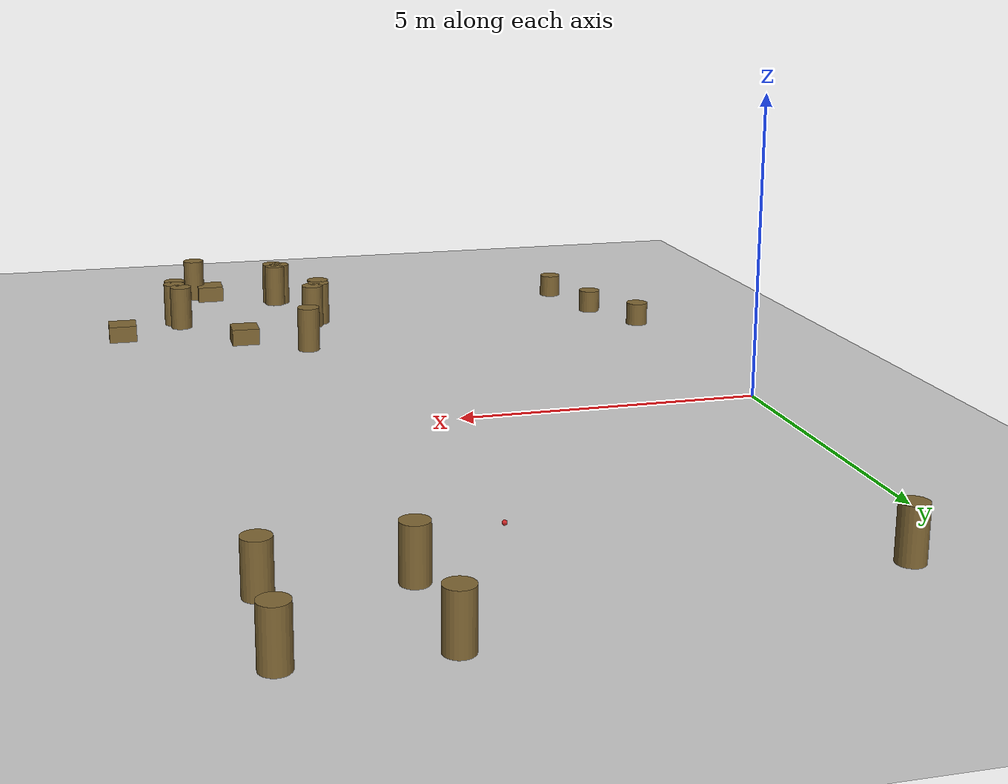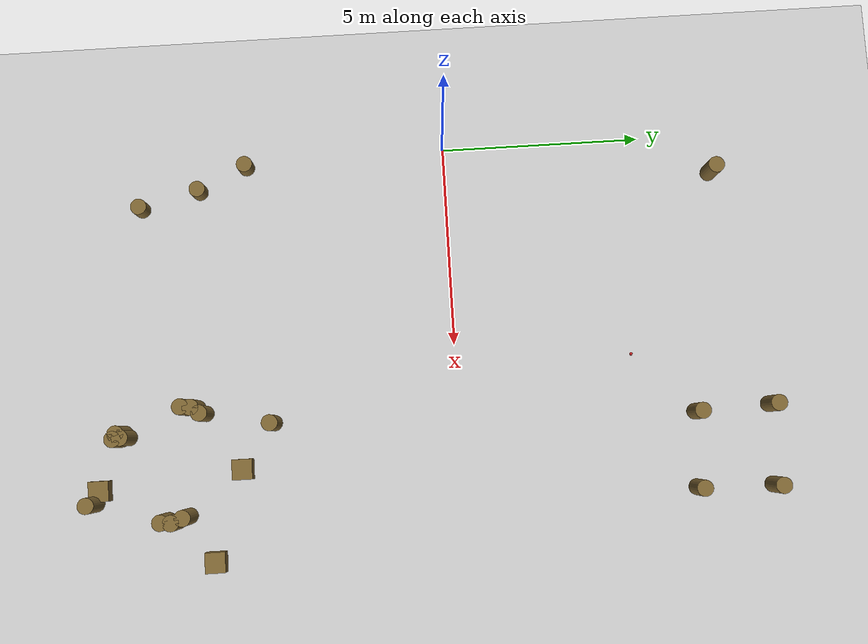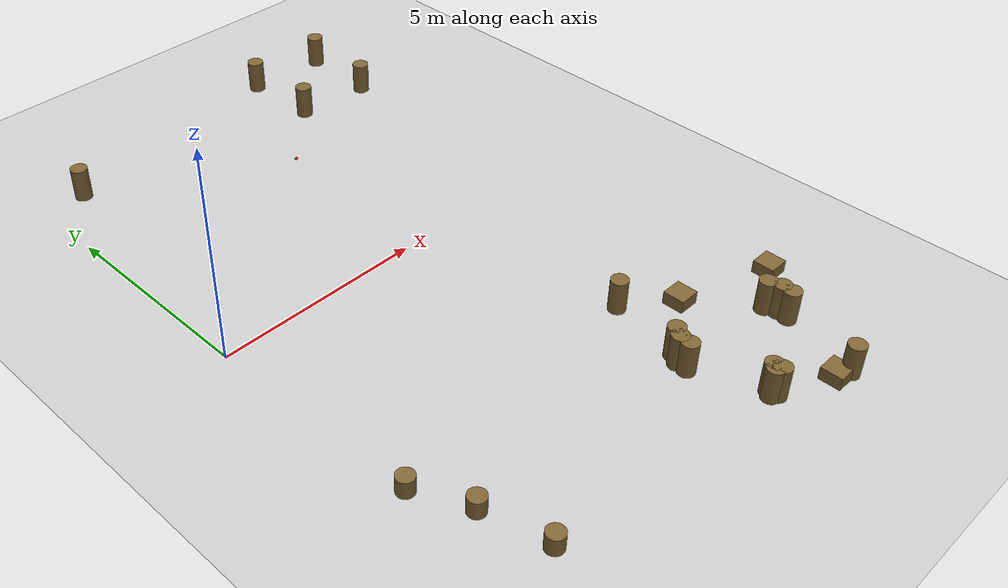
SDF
<sdf version="1.6">
 <world name="default">
  <model name="ground_plane">
   <static>1</static>
   <link name="link">
    <collision name="collision">
     <geometry><plane><normal>0 0 1</normal><size>100 100</size></plane></geometry>
     <surface><friction><ode><mu>100</mu><mu2>50</mu2></ode></friction></surface>
    </collision>
    <visual name="visual">
     <cast_shadows>0</cast_shadows>
     <geometry><plane><normal>0 0 1</normal><size>100 100</size></plane></geometry>
     <material>
      <script><uri>file://media/materials/scripts/gazebo.material</uri><name>Gazebo/Grey</name></script>
     </material>
    </visual>
   </link>
  </model>
  <model name="mini_cylinder_0_clone_0">
   <link name="link">
    <inertial>
     <mass>1</mass>
     <inertia><ixx>0.145833</ixx><ixy>0</ixy><ixz>0</ixz><iyy>0.145833</iyy><iyz>0</iyz><izz>0.125</izz></inertia>
    </inertial>
    <visual name="visual">
     <geometry><cylinder><radius>0.2</radius><length>0.8</length></cylinder></geometry>
     <material>
      <script><name>Gazebo/Grey</name><uri>file://media/materials/scripts/gazebo.material</uri></script>
      <shader type="vertex"><normal_map>__default__</normal_map></shader>
      <ambient>0.5 0.4 0.2 1</ambient>
      <diffuse>0.7 0.7 0.7 1</diffuse>
      <specular>0.01 0.01 0.01 1</specular>
      <emissive>0 0 0 1</emissive>
     </material>
    </visual>
    <collision name="collision">
     <geometry><cylinder><radius>0.2</radius><length>0.8</length></cylinder></geometry>
     <surface>
      <friction>
       <ode><mu>1</mu><mu2>1</mu2><fdir1>0 0 0</fdir1><slip1>0</slip1><slip2>0</slip2></ode>
       <torsional>
        <coefficient>1</coefficient>
        <patch_radius>0</patch_radius>
        <surface_radius>0</surface_radius>
        <use_patch_radius>1</use_patch_radius>
        <ode><slip>0</slip></ode>
       </torsional>
      </friction>
      <bounce><restitution_coefficient>0</restitution_coefficient><threshold>1e+06</threshold></bounce>
      <contact>
       <collide_without_contact>0</collide_without_contact>
       <collide_without_contact_bitmask>1</collide_without_contact_bitmask>
       <collide_bitmask>1</collide_bitmask>
       <ode>
        <soft_cfm>0</soft_cfm>
        <soft_erp>0.2</soft_erp>
        <kp>1e+13</kp>
        <kd>1</kd>
        <max_vel>0.01</max_vel>
        <min_depth>0</min_depth>
       </ode>
       <bullet>
        <split_impulse>1</split_impulse>
        <split_impulse_penetration_threshold>-0.01</split_impulse_penetration_threshold>
        <soft_cfm>0</soft_cfm>
        <soft_erp>0.2</soft_erp>
        <kp>1e+13</kp>
        <kd>1</kd>
       </bullet>
      </contact>
     </surface>
    </collision>
   </link>
   <static>1</static>
   <pose>8.88945 5.77982 0.348185 0 -0 0</pose>
  </model>
  <model name="target_0">
   <link name="link">
    <pose>0 0 0.0375 0 -0 0</pose>
    <inertial>
     <mass>0.1467</mass>
     <inertia>
      <ixx>8.25187e-05</ixx>
      <ixy>0</ixy>
      <ixz>0</ixz>
      <iyy>8.25187e-05</iyy>
      <iyz>0</iyz>
      <izz>8.25187e-05</izz>
     </inertia>
    </inertial>
    <velocity_decay><linear>0</linear><angular>0.005</angular></velocity_decay>
    <visual name="visual">
     <geometry><sphere><radius>0.0375</radius></sphere></geometry>
     <material>
      <script><uri>file://media/materials/scripts/gazebo.material</uri><name>Gazebo/Red</name></script>
      <shader type="pixel"/>
     </material>
    </visual>
    <collision name="collision">
     <geometry><sphere><radius>0.0375</radius></sphere></geometry>
     <surface>
      <friction>
       <ode><mu>1</mu><mu2>1</mu2><fdir1>0 0 0</fdir1><slip1>0</slip1><slip2>0</slip2></ode>
       <torsional>
        <coefficient>1</coefficient>
        <patch_radius>0</patch_radius>
        <surface_radius>0.01</surface_radius>
        <use_patch_radius>0</use_patch_radius>
        <ode><slip>0</slip></ode>
       </torsional>
      </friction>
      <bounce><restitution_coefficient>0</restitution_coefficient><threshold>1e+06</threshold></bounce>
      <contact>
       <collide_without_contact>0</collide_without_contact>
       <collide_without_contact_bitmask>1</collide_without_contact_bitmask>
       <collide_bitmask>1</collide_bitmask>
       <ode>
        <soft_cfm>0</soft_cfm>
        <soft_erp>0.2</soft_erp>
        <kp>100000</kp>
        <kd>100</kd>
        <max_vel>100</max_vel>
        <min_depth>0.001</min_depth>
       </ode>
       <bullet>
        <split_impulse>1</split_impulse>
        <split_impulse_penetration_threshold>-0.01</split_impulse_penetration_threshold>
        <soft_cfm>0</soft_cfm>
        <soft_erp>0.2</soft_erp>
        <kp>100000</kp>
        <kd>100</kd>
       </bullet>
      </contact>
     </surface>
    </collision>
   </link>
   <static>0</static>
   <pose>5.5098 4.40714 -0.001014 0 -0 0</pose>
  </model>
  <model name="mini_cylinder_0_clone_0_clone">
   <link name="link">
    <inertial>
     <mass>1</mass>
     <inertia><ixx>0.145833</ixx><ixy>0</ixy><ixz>0</ixz><iyy>0.145833</iyy><iyz>0</iyz><izz>0.125</izz></inertia>
    </inertial>
    <visual name="visual">
     <geometry><cylinder><radius>0.2</radius><length>0.8</length></cylinder></geometry>
     <material>
      <script><name>Gazebo/Grey</name><uri>file://media/materials/scripts/gazebo.material</uri></script>
      <shader type="vertex"><normal_map>__default__</normal_map></shader>
      <ambient>0.5 0.4 0.2 1</ambient>
      <diffuse>0.7 0.7 0.7 1</diffuse>
      <specular>0.01 0.01 0.01 1</specular>
      <emissive>0 0 0 1</emissive>
     </material>
    </visual>
    <collision name="collision">
     <geometry><cylinder><radius>0.2</radius><length>0.8</length></cylinder></geometry>
     <surface>
      <friction>
       <ode><mu>1</mu><mu2>1</mu2><fdir1>0 0 0</fdir1><slip1>0</slip1><slip2>0</slip2></ode>
       <torsional>
        <coefficient>1</coefficient>
        <patch_radius>0</patch_radius>
        <surface_radius>0</surface_radius>
        <use_patch_radius>1</use_patch_radius>
        <ode><slip>0</slip></ode>
       </torsional>
      </friction>
      <bounce><restitution_coefficient>0</restitution_coefficient><threshold>1e+06</threshold></bounce>
      <contact>
       <collide_without_contact>0</collide_without_contact>
       <collide_without_contact_bitmask>1</collide_without_contact_bitmask>
       <collide_bitmask>1</collide_bitmask>
       <ode>
        <soft_cfm>0</soft_cfm>
        <soft_erp>0.2</soft_erp>
        <kp>1e+13</kp>
        <kd>1</kd>
        <max_vel>0.01</max_vel>
        <min_depth>0</min_depth>
       </ode>
       <bullet>
        <split_impulse>1</split_impulse>
        <split_impulse_penetration_threshold>-0.01</split_impulse_penetration_threshold>
        <soft_cfm>0</soft_cfm>
        <soft_erp>0.2</soft_erp>
        <kp>1e+13</kp>
        <kd>1</kd>
       </bullet>
      </contact>
     </surface>
    </collision>
   </link>
   <static>1</static>
   <pose>7.02966 5.87996 0.4 0 -0 0</pose>
  </model>
  <model name="mini_cylinder_0_clone_0_clone_0">
   <link name="link">
    <inertial>
     <mass>1</mass>
     <inertia><ixx>0.145833</ixx><ixy>0</ixy><ixz>0</ixz><iyy>0.145833</iyy><iyz>0</iyz><izz>0.125</izz></inertia>
    </inertial>
    <visual name="visual">
     <geometry><cylinder><radius>0.2</radius><length>0.8</length></cylinder></geometry>
     <material>
      <script><name>Gazebo/Grey</name><uri>file://media/materials/scripts/gazebo.material</uri></script>
      <shader type="vertex"><normal_map>__default__</normal_map></shader>
      <ambient>0.5 0.4 0.2 1</ambient>
      <diffuse>0.7 0.7 0.7 1</diffuse>
      <specular>0.01 0.01 0.01 1</specular>
      <emissive>0 0 0 1</emissive>
     </material>
    </visual>
    <collision name="collision">
     <geometry><cylinder><radius>0.2</radius><length>0.8</length></cylinder></geometry>
     <surface>
      <friction>
       <ode><mu>1</mu><mu2>1</mu2><fdir1>0 0 0</fdir1><slip1>0</slip1><slip2>0</slip2></ode>
       <torsional>
        <coefficient>1</coefficient>
        <patch_radius>0</patch_radius>
        <surface_radius>0</surface_radius>
        <use_patch_radius>1</use_patch_radius>
        <ode><slip>0</slip></ode>
       </torsional>
      </friction>
      <bounce><restitution_coefficient>0</restitution_coefficient><threshold>1e+06</threshold></bounce>
      <contact>
       <collide_without_contact>0</collide_without_contact>
       <collide_without_contact_bitmask>1</collide_without_contact_bitmask>
       <collide_bitmask>1</collide_bitmask>
       <ode>
        <soft_cfm>0</soft_cfm>
        <soft_erp>0.2</soft_erp>
        <kp>1e+13</kp>
        <kd>1</kd>
        <max_vel>0.01</max_vel>
        <min_depth>0</min_depth>
       </ode>
       <bullet>
        <split_impulse>1</split_impulse>
        <split_impulse_penetration_threshold>-0.01</split_impulse_penetration_threshold>
        <soft_cfm>0</soft_cfm>
        <soft_erp>0.2</soft_erp>
        <kp>1e+13</kp>
        <kd>1</kd>
       </bullet>
      </contact>
     </surface>
    </collision>
   </link>
   <static>1</static>
   <pose>6.95356 7.73119 0.4 0 -0 0</pose>
  </model>
  <model name="mini_cylinder_0_clone_0_clone_1">
   <link name="link">
    <inertial>
     <mass>1</mass>
     <inertia><ixx>0.145833</ixx><ixy>0</ixy><ixz>0</ixz><iyy>0.145833</iyy><iyz>0</iyz><izz>0.125</izz></inertia>
    </inertial>
    <visual name="visual">
     <geometry><cylinder><radius>0.2</radius><length>0.8</length></cylinder></geometry>
     <material>
      <script><name>Gazebo/Grey</name><uri>file://media/materials/scripts/gazebo.material</uri></script>
      <shader type="vertex"><normal_map>__default__</normal_map></shader>
      <ambient>0.5 0.4 0.2 1</ambient>
      <diffuse>0.7 0.7 0.7 1</diffuse>
      <specular>0.01 0.01 0.01 1</specular>
      <emissive>0 0 0 1</emissive>
     </material>
    </visual>
    <collision name="collision">
     <geometry><cylinder><radius>0.2</radius><length>0.8</length></cylinder></geometry>
     <surface>
      <friction>
       <ode><mu>1</mu><mu2>1</mu2><fdir1>0 0 0</fdir1><slip1>0</slip1><slip2>0</slip2></ode>
       <torsional>
        <coefficient>1</coefficient>
        <patch_radius>0</patch_radius>
        <surface_radius>0</surface_radius>
        <use_patch_radius>1</use_patch_radius>
        <ode><slip>0</slip></ode>
       </torsional>
      </friction>
      <bounce><restitution_coefficient>0</restitution_coefficient><threshold>1e+06</threshold></bounce>
      <contact>
       <collide_without_contact>0</collide_without_contact>
       <collide_without_contact_bitmask>1</collide_without_contact_bitmask>
       <collide_bitmask>1</collide_bitmask>
       <ode>
        <soft_cfm>0</soft_cfm>
        <soft_erp>0.2</soft_erp>
        <kp>1e+13</kp>
        <kd>1</kd>
        <max_vel>0.01</max_vel>
        <min_depth>0</min_depth>
       </ode>
       <bullet>
        <split_impulse>1</split_impulse>
        <split_impulse_penetration_threshold>-0.01</split_impulse_penetration_threshold>
        <soft_cfm>0</soft_cfm>
        <soft_erp>0.2</soft_erp>
        <kp>1e+13</kp>
        <kd>1</kd>
       </bullet>
      </contact>
     </surface>
    </collision>
   </link>
   <static>1</static>
   <pose>8.93133 7.65541 0.4 0 -0 0</pose>
  </model>
  <model name="mini_cylinder_0_clone_0_clone_2">
   <link name="link">
    <inertial>
     <mass>1</mass>
     <inertia><ixx>0.145833</ixx><ixy>0</ixy><ixz>0</ixz><iyy>0.145833</iyy><iyz>0</iyz><izz>0.125</izz></inertia>
    </inertial>
    <visual name="visual">
     <geometry><cylinder><radius>0.2</radius><length>0.8</length></cylinder></geometry>
     <material>
      <script><name>Gazebo/Grey</name><uri>file://media/materials/scripts/gazebo.material</uri></script>
      <shader type="vertex"><normal_map>__default__</normal_map></shader>
      <ambient>0.5 0.4 0.2 1</ambient>
      <diffuse>0.7 0.7 0.7 1</diffuse>
      <specular>0.01 0.01 0.01 1</specular>
      <emissive>0 0 0 1</emissive>
     </material>
    </visual>
    <collision name="collision">
     <geometry><cylinder><radius>0.2</radius><length>0.8</length></cylinder></geometry>
     <surface>
      <friction>
       <ode><mu>1</mu><mu2>1</mu2><fdir1>0 0 0</fdir1><slip1>0</slip1><slip2>0</slip2></ode>
       <torsional>
        <coefficient>1</coefficient>
        <patch_radius>0</patch_radius>
        <surface_radius>0</surface_radius>
        <use_patch_radius>1</use_patch_radius>
        <ode><slip>0</slip></ode>
       </torsional>
      </friction>
      <bounce><restitution_coefficient>0</restitution_coefficient><threshold>1e+06</threshold></bounce>
      <contact>
       <collide_without_contact>0</collide_without_contact>
       <collide_without_contact_bitmask>1</collide_without_contact_bitmask>
       <collide_bitmask>1</collide_bitmask>
       <ode>
        <soft_cfm>0</soft_cfm>
        <soft_erp>0.2</soft_erp>
        <kp>1e+13</kp>
        <kd>1</kd>
        <max_vel>0.01</max_vel>
        <min_depth>0</min_depth>
       </ode>
       <bullet>
        <split_impulse>1</split_impulse>
        <split_impulse_penetration_threshold>-0.01</split_impulse_penetration_threshold>
        <soft_cfm>0</soft_cfm>
        <soft_erp>0.2</soft_erp>
        <kp>1e+13</kp>
        <kd>1</kd>
       </bullet>
      </contact>
     </surface>
    </collision>
   </link>
   <static>1</static>
   <pose>8.85526 -6.7474 0.4 0 -0 0</pose>
  </model>
  <model name="mini_cylinder_0_clone_0_clone_5">
   <link name="link">
    <inertial>
     <mass>1</mass>
     <inertia><ixx>0.145833</ixx><ixy>0</ixy><ixz>0</ixz><iyy>0.145833</iyy><iyz>0</iyz><izz>0.125</izz></inertia>
    </inertial>
    <visual name="visual">
     <geometry><cylinder><radius>0.2</radius><length>0.8</length></cylinder></geometry>
     <material>
      <script><name>Gazebo/Grey</name><uri>file://media/materials/scripts/gazebo.material</uri></script>
      <shader type="vertex"><normal_map>__default__</normal_map></shader>
      <ambient>0.5 0.4 0.2 1</ambient>
      <diffuse>0.7 0.7 0.7 1</diffuse>
      <specular>0.01 0.01 0.01 1</specular>
      <emissive>0 0 0 1</emissive>
     </material>
    </visual>
    <collision name="collision">
     <geometry><cylinder><radius>0.2</radius><length>0.8</length></cylinder></geometry>
     <surface>
      <friction>
       <ode><mu>1</mu><mu2>1</mu2><fdir1>0 0 0</fdir1><slip1>0</slip1><slip2>0</slip2></ode>
       <torsional>
        <coefficient>1</coefficient>
        <patch_radius>0</patch_radius>
        <surface_radius>0</surface_radius>
        <use_patch_radius>1</use_patch_radius>
        <ode><slip>0</slip></ode>
       </torsional>
      </friction>
      <bounce><restitution_coefficient>0</restitution_coefficient><threshold>1e+06</threshold></bounce>
      <contact>
       <collide_without_contact>0</collide_without_contact>
       <collide_without_contact_bitmask>1</collide_without_contact_bitmask>
       <collide_bitmask>1</collide_bitmask>
       <ode>
        <soft_cfm>0</soft_cfm>
        <soft_erp>0.2</soft_erp>
        <kp>1e+13</kp>
        <kd>1</kd>
        <max_vel>0.01</max_vel>
        <min_depth>0</min_depth>
       </ode>
       <bullet>
        <split_impulse>1</split_impulse>
        <split_impulse_penetration_threshold>-0.01</split_impulse_penetration_threshold>
        <soft_cfm>0</soft_cfm>
        <soft_erp>0.2</soft_erp>
        <kp>1e+13</kp>
        <kd>1</kd>
       </bullet>
      </contact>
     </surface>
    </collision>
   </link>
   <static>1</static>
   <pose>8.9567 -7.0263 0.4 0 -0 0</pose>
  </model>
  <model name="mini_cylinder_0_clone_0_clone_6">
   <link name="link">
    <inertial>
     <mass>1</mass>
     <inertia><ixx>0.145833</ixx><ixy>0</ixy><ixz>0</ixz><iyy>0.145833</iyy><iyz>0</iyz><izz>0.125</izz></inertia>
    </inertial>
    <visual name="visual">
     <geometry><cylinder><radius>0.2</radius><length>0.8</length></cylinder></geometry>
     <material>
      <script><name>Gazebo/Grey</name><uri>file://media/materials/scripts/gazebo.material</uri></script>
      <shader type="vertex"><normal_map>__default__</normal_map></shader>
      <ambient>0.5 0.4 0.2 1</ambient>
      <diffuse>0.7 0.7 0.7 1</diffuse>
      <specular>0.01 0.01 0.01 1</specular>
      <emissive>0 0 0 1</emissive>
     </material>
    </visual>
    <collision name="collision">
     <geometry><cylinder><radius>0.2</radius><length>0.8</length></cylinder></geometry>
     <surface>
      <friction>
       <ode><mu>1</mu><mu2>1</mu2><fdir1>0 0 0</fdir1><slip1>0</slip1><slip2>0</slip2></ode>
       <torsional>
        <coefficient>1</coefficient>
        <patch_radius>0</patch_radius>
        <surface_radius>0</surface_radius>
        <use_patch_radius>1</use_patch_radius>
        <ode><slip>0</slip></ode>
       </torsional>
      </friction>
      <bounce><restitution_coefficient>0</restitution_coefficient><threshold>1e+06</threshold></bounce>
      <contact>
       <collide_without_contact>0</collide_without_contact>
       <collide_without_contact_bitmask>1</collide_without_contact_bitmask>
       <collide_bitmask>1</collide_bitmask>
       <ode>
        <soft_cfm>0</soft_cfm>
        <soft_erp>0.2</soft_erp>
        <kp>1e+13</kp>
        <kd>1</kd>
        <max_vel>0.01</max_vel>
        <min_depth>0</min_depth>
       </ode>
       <bullet>
        <split_impulse>1</split_impulse>
        <split_impulse_penetration_threshold>-0.01</split_impulse_penetration_threshold>
        <soft_cfm>0</soft_cfm>
        <soft_erp>0.2</soft_erp>
        <kp>1e+13</kp>
        <kd>1</kd>
       </bullet>
      </contact>
     </surface>
    </collision>
   </link>
   <static>1</static>
   <pose>8.93133 -7.27982 0.4 0 -0 0</pose>
  </model>
  <model name="mini_cylinder_0_clone_0_clone_7">
   <link name="link">
    <inertial>
     <mass>1</mass>
     <inertia><ixx>0.145833</ixx><ixy>0</ixy><ixz>0</ixz><iyy>0.145833</iyy><iyz>0</iyz><izz>0.125</izz></inertia>
    </inertial>
    <visual name="visual">
     <geometry><cylinder><radius>0.2</radius><length>0.8</length></cylinder></geometry>
     <material>
      <script><name>Gazebo/Grey</name><uri>file://media/materials/scripts/gazebo.material</uri></script>
      <shader type="vertex"><normal_map>__default__</normal_map></shader>
      <ambient>0.5 0.4 0.2 1</ambient>
      <diffuse>0.7 0.7 0.7 1</diffuse>
      <specular>0.01 0.01 0.01 1</specular>
      <emissive>0 0 0 1</emissive>
     </material>
    </visual>
    <collision name="collision">
     <geometry><cylinder><radius>0.2</radius><length>0.8</length></cylinder></geometry>
     <surface>
      <friction>
       <ode><mu>1</mu><mu2>1</mu2><fdir1>0 0 0</fdir1><slip1>0</slip1><slip2>0</slip2></ode>
       <torsional>
        <coefficient>1</coefficient>
        <patch_radius>0</patch_radius>
        <surface_radius>0</surface_radius>
        <use_patch_radius>1</use_patch_radius>
        <ode><slip>0</slip></ode>
       </torsional>
      </friction>
      <bounce><restitution_coefficient>0</restitution_coefficient><threshold>1e+06</threshold></bounce>
      <contact>
       <collide_without_contact>0</collide_without_contact>
       <collide_without_contact_bitmask>1</collide_without_contact_bitmask>
       <collide_bitmask>1</collide_bitmask>
       <ode>
        <soft_cfm>0</soft_cfm>
        <soft_erp>0.2</soft_erp>
        <kp>1e+13</kp>
        <kd>1</kd>
        <max_vel>0.01</max_vel>
        <min_depth>0</min_depth>
       </ode>
       <bullet>
        <split_impulse>1</split_impulse>
        <split_impulse_penetration_threshold>-0.01</split_impulse_penetration_threshold>
        <soft_cfm>0</soft_cfm>
        <soft_erp>0.2</soft_erp>
        <kp>1e+13</kp>
        <kd>1</kd>
       </bullet>
      </contact>
     </surface>
    </collision>
   </link>
   <static>1</static>
   <pose>6.87749 -8.36985 0.4 0 -0 0</pose>
  </model>
  <model name="mini_cylinder_0_clone_0_clone_8">
   <link name="link">
    <inertial>
     <mass>1</mass>
     <inertia><ixx>0.145833</ixx><ixy>0</ixy><ixz>0</ixz><iyy>0.145833</iyy><iyz>0</iyz><izz>0.125</izz></inertia>
    </inertial>
    <visual name="visual">
     <geometry><cylinder><radius>0.2</radius><length>0.8</length></cylinder></geometry>
     <material>
      <script><name>Gazebo/Grey</name><uri>file://media/materials/scripts/gazebo.material</uri></script>
      <shader type="vertex"><normal_map>__default__</normal_map></shader>
      <ambient>0.5 0.4 0.2 1</ambient>
      <diffuse>0.7 0.7 0.7 1</diffuse>
      <specular>0.01 0.01 0.01 1</specular>
      <emissive>0 0 0 1</emissive>
     </material>
    </visual>
    <collision name="collision">
     <geometry><cylinder><radius>0.2</radius><length>0.8</length></cylinder></geometry>
     <surface>
      <friction>
       <ode><mu>1</mu><mu2>1</mu2><fdir1>0 0 0</fdir1><slip1>0</slip1><slip2>0</slip2></ode>
       <torsional>
        <coefficient>1</coefficient>
        <patch_radius>0</patch_radius>
        <surface_radius>0</surface_radius>
        <use_patch_radius>1</use_patch_radius>
        <ode><slip>0</slip></ode>
       </torsional>
      </friction>
      <bounce><restitution_coefficient>0</restitution_coefficient><threshold>1e+06</threshold></bounce>
      <contact>
       <collide_without_contact>0</collide_without_contact>
       <collide_without_contact_bitmask>1</collide_without_contact_bitmask>
       <collide_bitmask>1</collide_bitmask>
       <ode>
        <soft_cfm>0</soft_cfm>
        <soft_erp>0.2</soft_erp>
        <kp>1e+13</kp>
        <kd>1</kd>
        <max_vel>0.01</max_vel>
        <min_depth>0</min_depth>
       </ode>
       <bullet>
        <split_impulse>1</split_impulse>
        <split_impulse_penetration_threshold>-0.01</split_impulse_penetration_threshold>
        <soft_cfm>0</soft_cfm>
        <soft_erp>0.2</soft_erp>
        <kp>1e+13</kp>
        <kd>1</kd>
       </bullet>
      </contact>
     </surface>
    </collision>
   </link>
   <static>1</static>
   <pose>6.75065 -8.29407 0.4 0 -0 0</pose>
  </model>
  <model name="mini_cylinder_0_clone_0_clone_9">
   <link name="link">
    <inertial>
     <mass>1</mass>
     <inertia><ixx>0.145833</ixx><ixy>0</ixy><ixz>0</ixz><iyy>0.145833</iyy><iyz>0</iyz><izz>0.125</izz></inertia>
    </inertial>
    <visual name="visual">
     <geometry><cylinder><radius>0.2</radius><length>0.8</length></cylinder></geometry>
     <material>
      <script><name>Gazebo/Grey</name><uri>file://media/materials/scripts/gazebo.material</uri></script>
      <shader type="vertex"><normal_map>__default__</normal_map></shader>
      <ambient>0.5 0.4 0.2 1</ambient>
      <diffuse>0.7 0.7 0.7 1</diffuse>
      <specular>0.01 0.01 0.01 1</specular>
      <emissive>0 0 0 1</emissive>
     </material>
    </visual>
    <collision name="collision">
     <geometry><cylinder><radius>0.2</radius><length>0.8</length></cylinder></geometry>
     <surface>
      <friction>
       <ode><mu>1</mu><mu2>1</mu2><fdir1>0 0 0</fdir1><slip1>0</slip1><slip2>0</slip2></ode>
       <torsional>
        <coefficient>1</coefficient>
        <patch_radius>0</patch_radius>
        <surface_radius>0</surface_radius>
        <use_patch_radius>1</use_patch_radius>
        <ode><slip>0</slip></ode>
       </torsional>
      </friction>
      <bounce><restitution_coefficient>0</restitution_coefficient><threshold>1e+06</threshold></bounce>
      <contact>
       <collide_without_contact>0</collide_without_contact>
       <collide_without_contact_bitmask>1</collide_without_contact_bitmask>
       <collide_bitmask>1</collide_bitmask>
       <ode>
        <soft_cfm>0</soft_cfm>
        <soft_erp>0.2</soft_erp>
        <kp>1e+13</kp>
        <kd>1</kd>
        <max_vel>0.01</max_vel>
        <min_depth>0</min_depth>
       </ode>
       <bullet>
        <split_impulse>1</split_impulse>
        <split_impulse_penetration_threshold>-0.01</split_impulse_penetration_threshold>
        <soft_cfm>0</soft_cfm>
        <soft_erp>0.2</soft_erp>
        <kp>1e+13</kp>
        <kd>1</kd>
       </bullet>
      </contact>
     </surface>
    </collision>
   </link>
   <static>1</static>
   <pose>6.85208 -8.1926 0.4 0 -0 0</pose>
  </model>
  <model name="mini_cylinder_0_clone_0_clone_10">
   <link name="link">
    <inertial>
     <mass>1</mass>
     <inertia><ixx>0.145833</ixx><ixy>0</ixy><ixz>0</ixz><iyy>0.145833</iyy><iyz>0</iyz><izz>0.125</izz></inertia>
    </inertial>
    <visual name="visual">
     <geometry><cylinder><radius>0.2</radius><length>0.8</length></cylinder></geometry>
     <material>
      <script><name>Gazebo/Grey</name><uri>file://media/materials/scripts/gazebo.material</uri></script>
      <shader type="vertex"><normal_map>__default__</normal_map></shader>
      <ambient>0.5 0.4 0.2 1</ambient>
      <diffuse>0.7 0.7 0.7 1</diffuse>
      <specular>0.01 0.01 0.01 1</specular>
      <emissive>0 0 0 1</emissive>
     </material>
    </visual>
    <collision name="collision">
     <geometry><cylinder><radius>0.2</radius><length>0.8</length></cylinder></geometry>
     <surface>
      <friction>
       <ode><mu>1</mu><mu2>1</mu2><fdir1>0 0 0</fdir1><slip1>0</slip1><slip2>0</slip2></ode>
       <torsional>
        <coefficient>1</coefficient>
        <patch_radius>0</patch_radius>
        <surface_radius>0</surface_radius>
        <use_patch_radius>1</use_patch_radius>
        <ode><slip>0</slip></ode>
       </torsional>
      </friction>
      <bounce><restitution_coefficient>0</restitution_coefficient><threshold>1e+06</threshold></bounce>
      <contact>
       <collide_without_contact>0</collide_without_contact>
       <collide_without_contact_bitmask>1</collide_without_contact_bitmask>
       <collide_bitmask>1</collide_bitmask>
       <ode>
        <soft_cfm>0</soft_cfm>
        <soft_erp>0.2</soft_erp>
        <kp>1e+13</kp>
        <kd>1</kd>
        <max_vel>0.01</max_vel>
        <min_depth>0</min_depth>
       </ode>
       <bullet>
        <split_impulse>1</split_impulse>
        <split_impulse_penetration_threshold>-0.01</split_impulse_penetration_threshold>
        <soft_cfm>0</soft_cfm>
        <soft_erp>0.2</soft_erp>
        <kp>1e+13</kp>
        <kd>1</kd>
       </bullet>
      </contact>
     </surface>
    </collision>
   </link>
   <static>1</static>
   <pose>6.19287 -6.72187 0.4 0 -0 0</pose>
  </model>
  <model name="mini_cylinder_0_clone_0_clone_11">
   <link name="link">
    <inertial>
     <mass>1</mass>
     <inertia><ixx>0.145833</ixx><ixy>0</ixy><ixz>0</ixz><iyy>0.145833</iyy><iyz>0</iyz><izz>0.125</izz></inertia>
    </inertial>
    <visual name="visual">
     <geometry><cylinder><radius>0.2</radius><length>0.8</length></cylinder></geometry>
     <material>
      <script><name>Gazebo/Grey</name><uri>file://media/materials/scripts/gazebo.material</uri></script>
      <shader type="vertex"><normal_map>__default__</normal_map></shader>
      <ambient>0.5 0.4 0.2 1</ambient>
      <diffuse>0.7 0.7 0.7 1</diffuse>
      <specular>0.01 0.01 0.01 1</specular>
      <emissive>0 0 0 1</emissive>
     </material>
    </visual>
    <collision name="collision">
     <geometry><cylinder><radius>0.2</radius><length>0.8</length></cylinder></geometry>
     <surface>
      <friction>
       <ode><mu>1</mu><mu2>1</mu2><fdir1>0 0 0</fdir1><slip1>0</slip1><slip2>0</slip2></ode>
       <torsional>
        <coefficient>1</coefficient>
        <patch_radius>0</patch_radius>
        <surface_radius>0</surface_radius>
        <use_patch_radius>1</use_patch_radius>
        <ode><slip>0</slip></ode>
       </torsional>
      </friction>
      <bounce><restitution_coefficient>0</restitution_coefficient><threshold>1e+06</threshold></bounce>
      <contact>
       <collide_without_contact>0</collide_without_contact>
       <collide_without_contact_bitmask>1</collide_without_contact_bitmask>
       <collide_bitmask>1</collide_bitmask>
       <ode>
        <soft_cfm>0</soft_cfm>
        <soft_erp>0.2</soft_erp>
        <kp>1e+13</kp>
        <kd>1</kd>
        <max_vel>0.01</max_vel>
        <min_depth>0</min_depth>
       </ode>
       <bullet>
        <split_impulse>1</split_impulse>
        <split_impulse_penetration_threshold>-0.01</split_impulse_penetration_threshold>
        <soft_cfm>0</soft_cfm>
        <soft_erp>0.2</soft_erp>
        <kp>1e+13</kp>
        <kd>1</kd>
       </bullet>
      </contact>
     </surface>
    </collision>
   </link>
   <static>1</static>
   <pose>6.2182 -6.47155 0.4 0 -0 0</pose>
  </model>
  <model name="mini_cylinder_0_clone_0_clone_12">
   <link name="link">
    <inertial>
     <mass>1</mass>
     <inertia><ixx>0.145833</ixx><ixy>0</ixy><ixz>0</ixz><iyy>0.145833</iyy><iyz>0</iyz><izz>0.125</izz></inertia>
    </inertial>
    <visual name="visual">
     <geometry><cylinder><radius>0.2</radius><length>0.8</length></cylinder></geometry>
     <material>
      <script><name>Gazebo/Grey</name><uri>file://media/materials/scripts/gazebo.material</uri></script>
      <shader type="vertex"><normal_map>__default__</normal_map></shader>
      <ambient>0.5 0.4 0.2 1</ambient>
      <diffuse>0.7 0.7 0.7 1</diffuse>
      <specular>0.01 0.01 0.01 1</specular>
      <emissive>0 0 0 1</emissive>
     </material>
    </visual>
    <collision name="collision">
     <geometry><cylinder><radius>0.2</radius><length>0.8</length></cylinder></geometry>
     <surface>
      <friction>
       <ode><mu>1</mu><mu2>1</mu2><fdir1>0 0 0</fdir1><slip1>0</slip1><slip2>0</slip2></ode>
       <torsional>
        <coefficient>1</coefficient>
        <patch_radius>0</patch_radius>
        <surface_radius>0</surface_radius>
        <use_patch_radius>1</use_patch_radius>
        <ode><slip>0</slip></ode>
       </torsional>
      </friction>
      <bounce><restitution_coefficient>0</restitution_coefficient><threshold>1e+06</threshold></bounce>
      <contact>
       <collide_without_contact>0</collide_without_contact>
       <collide_without_contact_bitmask>1</collide_without_contact_bitmask>
       <collide_bitmask>1</collide_bitmask>
       <ode>
        <soft_cfm>0</soft_cfm>
        <soft_erp>0.2</soft_erp>
        <kp>1e+13</kp>
        <kd>1</kd>
        <max_vel>0.01</max_vel>
        <min_depth>0</min_depth>
       </ode>
       <bullet>
        <split_impulse>1</split_impulse>
        <split_impulse_penetration_threshold>-0.01</split_impulse_penetration_threshold>
        <soft_cfm>0</soft_cfm>
        <soft_erp>0.2</soft_erp>
        <kp>1e+13</kp>
        <kd>1</kd>
       </bullet>
      </contact>
     </surface>
    </collision>
   </link>
   <static>1</static>
   <pose>6.37037 -6.26877 0.4 0 -0 0</pose>
  </model>
  <model name="mini_box_clone_clone_3_clone">
   <link name="link">
    <inertial>
     <mass>1</mass>
     <inertia>
      <ixx>0.166667</ixx>
      <ixy>0</ixy>
      <ixz>0</ixz>
      <iyy>0.166667</iyy>
      <iyz>0</iyz>
      <izz>0.166667</izz>
     </inertia>
    </inertial>
    <visual name="visual">
     <geometry><box><size>0.5 0.5 0.3</size></box></geometry>
     <material>
      <script><name>Gazebo/Grey</name><uri>file://media/materials/scripts/gazebo.material</uri></script>
      <shader type="vertex"><normal_map>__default__</normal_map></shader>
      <ambient>0.5 0.4 0.2 1</ambient>
      <diffuse>0.7 0.7 0.7 1</diffuse>
      <specular>0.01 0.01 0.01 1</specular>
      <emissive>0 0 0 1</emissive>
     </material>
    </visual>
    <collision name="collision">
     <geometry><box><size>0.5 0.5 0.3</size></box></geometry>
     <surface>
      <friction>
       <ode><mu>1</mu><mu2>1</mu2><fdir1>0 0 0</fdir1><slip1>0</slip1><slip2>0</slip2></ode>
       <torsional>
        <coefficient>1</coefficient>
        <patch_radius>0</patch_radius>
        <surface_radius>0</surface_radius>
        <use_patch_radius>1</use_patch_radius>
        <ode><slip>0</slip></ode>
       </torsional>
      </friction>
      <bounce><restitution_coefficient>0</restitution_coefficient><threshold>1e+06</threshold></bounce>
      <contact>
       <collide_without_contact>0</collide_without_contact>
       <collide_without_contact_bitmask>1</collide_without_contact_bitmask>
       <collide_bitmask>1</collide_bitmask>
       <ode>
        <soft_cfm>0</soft_cfm>
        <soft_erp>0.2</soft_erp>
        <kp>1e+13</kp>
        <kd>1</kd>
        <max_vel>0.01</max_vel>
        <min_depth>0</min_depth>
       </ode>
       <bullet>
        <split_impulse>1</split_impulse>
        <split_impulse_penetration_threshold>-0.01</split_impulse_penetration_threshold>
        <soft_cfm>0</soft_cfm>
        <soft_erp>0.2</soft_erp>
        <kp>1e+13</kp>
        <kd>1</kd>
       </bullet>
      </contact>
     </surface>
    </collision>
   </link>
   <static>1</static>
   <pose>7.79044 -5.38056 0.15 0 -0 0</pose>
  </model>
  <model name="mini_box_clone_clone_3_clone_0">
   <link name="link">
    <inertial>
     <mass>1</mass>
     <inertia>
      <ixx>0.166667</ixx>
      <ixy>0</ixy>
      <ixz>0</ixz>
      <iyy>0.166667</iyy>
      <iyz>0</iyz>
      <izz>0.166667</izz>
     </inertia>
    </inertial>
    <visual name="visual">
     <geometry><box><size>0.5 0.5 0.3</size></box></geometry>
     <material>
      <script><name>Gazebo/Grey</name><uri>file://media/materials/scripts/gazebo.material</uri></script>
      <shader type="vertex"><normal_map>__default__</normal_map></shader>
      <ambient>0.5 0.4 0.2 1</ambient>
      <diffuse>0.7 0.7 0.7 1</diffuse>
      <specular>0.01 0.01 0.01 1</specular>
      <emissive>0 0 0 1</emissive>
     </material>
    </visual>
    <collision name="collision">
     <geometry><box><size>0.5 0.5 0.3</size></box></geometry>
     <surface>
      <friction>
       <ode><mu>1</mu><mu2>1</mu2><fdir1>0 0 0</fdir1><slip1>0</slip1><slip2>0</slip2></ode>
       <torsional>
        <coefficient>1</coefficient>
        <patch_radius>0</patch_radius>
        <surface_radius>0</surface_radius>
        <use_patch_radius>1</use_patch_radius>
        <ode><slip>0</slip></ode>
       </torsional>
      </friction>
      <bounce><restitution_coefficient>0</restitution_coefficient><threshold>1e+06</threshold></bounce>
      <contact>
       <collide_without_contact>0</collide_without_contact>
       <collide_without_contact_bitmask>1</collide_without_contact_bitmask>
       <collide_bitmask>1</collide_bitmask>
       <ode>
        <soft_cfm>0</soft_cfm>
        <soft_erp>0.2</soft_erp>
        <kp>1e+13</kp>
        <kd>1</kd>
        <max_vel>0.01</max_vel>
        <min_depth>0</min_depth>
       </ode>
       <bullet>
        <split_impulse>1</split_impulse>
        <split_impulse_penetration_threshold>-0.01</split_impulse_penetration_threshold>
        <soft_cfm>0</soft_cfm>
        <soft_erp>0.2</soft_erp>
        <kp>1e+13</kp>
        <kd>1</kd>
       </bullet>
      </contact>
     </surface>
    </collision>
   </link>
   <static>1</static>
   <pose>8.12011 -8.90516 0.15 0 -0 0</pose>
  </model>
  <model name="mini_box_clone_clone_3_clone_1">
   <link name="link">
    <inertial>
     <mass>1</mass>
     <inertia>
      <ixx>0.166667</ixx>
      <ixy>0</ixy>
      <ixz>0</ixz>
      <iyy>0.166667</iyy>
      <iyz>0</iyz>
      <izz>0.166667</izz>
     </inertia>
    </inertial>
    <visual name="visual">
     <geometry><box><size>0.5 0.5 0.3</size></box></geometry>
     <material>
      <script><name>Gazebo/Grey</name><uri>file://media/materials/scripts/gazebo.material</uri></script>
      <shader type="vertex"><normal_map>__default__</normal_map></shader>
      <ambient>0.5 0.4 0.2 1</ambient>
      <diffuse>0.7 0.7 0.7 1</diffuse>
      <specular>0.01 0.01 0.01 1</specular>
      <emissive>0 0 0 1</emissive>
     </material>
    </visual>
    <collision name="collision">
     <geometry><box><size>0.5 0.5 0.3</size></box></geometry>
     <surface>
      <friction>
       <ode><mu>1</mu><mu2>1</mu2><fdir1>0 0 0</fdir1><slip1>0</slip1><slip2>0</slip2></ode>
       <torsional>
        <coefficient>1</coefficient>
        <patch_radius>0</patch_radius>
        <surface_radius>0</surface_radius>
        <use_patch_radius>1</use_patch_radius>
        <ode><slip>0</slip></ode>
       </torsional>
      </friction>
      <bounce><restitution_coefficient>0</restitution_coefficient><threshold>1e+06</threshold></bounce>
      <contact>
       <collide_without_contact>0</collide_without_contact>
       <collide_without_contact_bitmask>1</collide_without_contact_bitmask>
       <collide_bitmask>1</collide_bitmask>
       <ode>
        <soft_cfm>0</soft_cfm>
        <soft_erp>0.2</soft_erp>
        <kp>1e+13</kp>
        <kd>1</kd>
        <max_vel>0.01</max_vel>
        <min_depth>0</min_depth>
       </ode>
       <bullet>
        <split_impulse>1</split_impulse>
        <split_impulse_penetration_threshold>-0.01</split_impulse_penetration_threshold>
        <soft_cfm>0</soft_cfm>
        <soft_erp>0.2</soft_erp>
        <kp>1e+13</kp>
        <kd>1</kd>
       </bullet>
      </contact>
     </surface>
    </collision>
   </link>
   <static>1</static>
   <pose>9.99645 -6.11609 0.15 0 -0 0</pose>
  </model>
  <model name="mini_cylinder_0_clone_0_clone_12_clone">
   <link name="link">
    <inertial>
     <mass>1</mass>
     <inertia><ixx>0.145833</ixx><ixy>0</ixy><ixz>0</ixz><iyy>0.145833</iyy><iyz>0</iyz><izz>0.125</izz></inertia>
    </inertial>
    <visual name="visual">
     <geometry><cylinder><radius>0.2</radius><length>0.8</length></cylinder></geometry>
     <material>
      <script><name>Gazebo/Grey</name><uri>file://media/materials/scripts/gazebo.material</uri></script>
      <shader type="vertex"><normal_map>__default__</normal_map></shader>
      <ambient>0.5 0.4 0.2 1</ambient>
      <diffuse>0.7 0.7 0.7 1</diffuse>
      <specular>0.01 0.01 0.01 1</specular>
      <emissive>0 0 0 1</emissive>
     </material>
    </visual>
    <collision name="collision">
     <geometry><cylinder><radius>0.2</radius><length>0.8</length></cylinder></geometry>
     <surface>
      <friction>
       <ode><mu>1</mu><mu2>1</mu2><fdir1>0 0 0</fdir1><slip1>0</slip1><slip2>0</slip2></ode>
       <torsional>
        <coefficient>1</coefficient>
        <patch_radius>0</patch_radius>
        <surface_radius>0</surface_radius>
        <use_patch_radius>1</use_patch_radius>
        <ode><slip>0</slip></ode>
       </torsional>
      </friction>
      <bounce><restitution_coefficient>0</restitution_coefficient><threshold>1e+06</threshold></bounce>
      <contact>
       <collide_without_contact>0</collide_without_contact>
       <collide_without_contact_bitmask>1</collide_without_contact_bitmask>
       <collide_bitmask>1</collide_bitmask>
       <ode>
        <soft_cfm>0</soft_cfm>
        <soft_erp>0.2</soft_erp>
        <kp>1e+13</kp>
        <kd>1</kd>
        <max_vel>0.01</max_vel>
        <min_depth>0</min_depth>
       </ode>
       <bullet>
        <split_impulse>1</split_impulse>
        <split_impulse_penetration_threshold>-0.01</split_impulse_penetration_threshold>
        <soft_cfm>0</soft_cfm>
        <soft_erp>0.2</soft_erp>
        <kp>1e+13</kp>
        <kd>1</kd>
       </bullet>
      </contact>
     </surface>
    </collision>
   </link>
   <static>1</static>
   <pose>6.70318 -4.57824 0.4 0 -0 0</pose>
  </model>
  <model name="mini_cylinder_0_clone_0_clone_12_clone_0">
   <link name="link">
    <inertial>
     <mass>1</mass>
     <inertia><ixx>0.145833</ixx><ixy>0</ixy><ixz>0</ixz><iyy>0.145833</iyy><iyz>0</iyz><izz>0.125</izz></inertia>
    </inertial>
    <visual name="visual">
     <geometry><cylinder><radius>0.2</radius><length>0.8</length></cylinder></geometry>
     <material>
      <script><name>Gazebo/Grey</name><uri>file://media/materials/scripts/gazebo.material</uri></script>
      <shader type="vertex"><normal_map>__default__</normal_map></shader>
      <ambient>0.5 0.4 0.2 1</ambient>
      <diffuse>0.7 0.7 0.7 1</diffuse>
      <specular>0.01 0.01 0.01 1</specular>
      <emissive>0 0 0 1</emissive>
     </material>
    </visual>
    <collision name="collision">
     <geometry><cylinder><radius>0.2</radius><length>0.8</length></cylinder></geometry>
     <surface>
      <friction>
       <ode><mu>1</mu><mu2>1</mu2><fdir1>0 0 0</fdir1><slip1>0</slip1><slip2>0</slip2></ode>
       <torsional>
        <coefficient>1</coefficient>
        <patch_radius>0</patch_radius>
        <surface_radius>0</surface_radius>
        <use_patch_radius>1</use_patch_radius>
        <ode><slip>0</slip></ode>
       </torsional>
      </friction>
      <bounce><restitution_coefficient>0</restitution_coefficient><threshold>1e+06</threshold></bounce>
      <contact>
       <collide_without_contact>0</collide_without_contact>
       <collide_without_contact_bitmask>1</collide_without_contact_bitmask>
       <collide_bitmask>1</collide_bitmask>
       <ode>
        <soft_cfm>0</soft_cfm>
        <soft_erp>0.2</soft_erp>
        <kp>1e+13</kp>
        <kd>1</kd>
        <max_vel>0.01</max_vel>
        <min_depth>0</min_depth>
       </ode>
       <bullet>
        <split_impulse>1</split_impulse>
        <split_impulse_penetration_threshold>-0.01</split_impulse_penetration_threshold>
        <soft_cfm>0</soft_cfm>
        <soft_erp>0.2</soft_erp>
        <kp>1e+13</kp>
        <kd>1</kd>
       </bullet>
      </contact>
     </surface>
    </collision>
   </link>
   <static>1</static>
   <pose>8.42734 -9.04098 0.4 0 -0 0</pose>
  </model>
  <model name="dynamic_1_0">
   <link name="link">
    <inertial>
     <mass>1</mass>
     <inertia><ixx>0.145833</ixx><ixy>0</ixy><ixz>0</ixz><iyy>0.145833</iyy><iyz>0</iyz><izz>0.125</izz></inertia>
    </inertial>
    <visual name="visual">
     <geometry><cylinder><radius>0.2</radius><length>0.8</length></cylinder></geometry>
     <material>
      <script><name>Gazebo/Grey</name><uri>file://media/materials/scripts/gazebo.material</uri></script>
      <shader type="vertex"><normal_map>__default__</normal_map></shader>
      <ambient>0.5 0.4 0.2 1</ambient>
      <diffuse>0.7 0.7 0.7 1</diffuse>
      <specular>0.01 0.01 0.01 1</specular>
      <emissive>0 0 0 1</emissive>
     </material>
    </visual>
    <collision name="collision">
     <geometry><cylinder><radius>0.2</radius><length>0.8</length></cylinder></geometry>
     <surface>
      <friction>
       <ode><mu>1</mu><mu2>1</mu2><fdir1>0 0 0</fdir1><slip1>0</slip1><slip2>0</slip2></ode>
       <torsional>
        <coefficient>1</coefficient>
        <patch_radius>0</patch_radius>
        <surface_radius>0</surface_radius>
        <use_patch_radius>1</use_patch_radius>
        <ode><slip>0</slip></ode>
       </torsional>
      </friction>
      <bounce><restitution_coefficient>0</restitution_coefficient><threshold>1e+06</threshold></bounce>
      <contact>
       <collide_without_contact>0</collide_without_contact>
       <collide_without_contact_bitmask>1</collide_without_contact_bitmask>
       <collide_bitmask>1</collide_bitmask>
       <ode>
        <soft_cfm>0</soft_cfm>
        <soft_erp>0.2</soft_erp>
        <kp>1e+13</kp>
        <kd>1</kd>
        <max_vel>0.01</max_vel>
        <min_depth>0</min_depth>
       </ode>
       <bullet>
        <split_impulse>1</split_impulse>
        <split_impulse_penetration_threshold>-0.01</split_impulse_penetration_threshold>
        <soft_cfm>0</soft_cfm>
        <soft_erp>0.2</soft_erp>
        <kp>1e+13</kp>
        <kd>1</kd>
       </bullet>
      </contact>
     </surface>
    </collision>
   </link>
   <static>0</static>
   <pose>0.99846 6.74248 0.399991 0 -0 0</pose>
  </model>
  <model name="dynamic_2_5">
   <link name="link">
    <inertial>
     <mass>1</mass>
     <inertia><ixx>0.145833</ixx><ixy>0</ixy><ixz>0</ixz><iyy>0.145833</iyy><iyz>0</iyz><izz>0.125</izz></inertia>
    </inertial>
    <visual name="visual">
     <geometry><cylinder><radius>0.2</radius><length>0.8</length></cylinder></geometry>
     <material>
      <script><name>Gazebo/Grey</name><uri>file://media/materials/scripts/gazebo.material</uri></script>
      <shader type="vertex"><normal_map>__default__</normal_map></shader>
      <ambient>0.5 0.4 0.2 1</ambient>
      <diffuse>0.7 0.7 0.7 1</diffuse>
      <specular>0.01 0.01 0.01 1</specular>
      <emissive>0 0 0 1</emissive>
     </material>
    </visual>
    <collision name="collision">
     <geometry><cylinder><radius>0.2</radius><length>0.8</length></cylinder></geometry>
     <surface>
      <friction>
       <ode><mu>1</mu><mu2>1</mu2><fdir1>0 0 0</fdir1><slip1>0</slip1><slip2>0</slip2></ode>
       <torsional>
        <coefficient>1</coefficient>
        <patch_radius>0</patch_radius>
        <surface_radius>0</surface_radius>
        <use_patch_radius>1</use_patch_radius>
        <ode><slip>0</slip></ode>
       </torsional>
      </friction>
      <bounce><restitution_coefficient>0</restitution_coefficient><threshold>1e+06</threshold></bounce>
      <contact>
       <collide_without_contact>0</collide_without_contact>
       <collide_without_contact_bitmask>1</collide_without_contact_bitmask>
       <collide_bitmask>1</collide_bitmask>
       <ode>
        <soft_cfm>0</soft_cfm>
        <soft_erp>0.2</soft_erp>
        <kp>1e+13</kp>
        <kd>1</kd>
        <max_vel>0.01</max_vel>
        <min_depth>0</min_depth>
       </ode>
       <bullet>
        <split_impulse>1</split_impulse>
        <split_impulse_penetration_threshold>-0.01</split_impulse_penetration_threshold>
        <soft_cfm>0</soft_cfm>
        <soft_erp>0.2</soft_erp>
        <kp>1e+13</kp>
        <kd>1</kd>
       </bullet>
      </contact>
     </surface>
    </collision>
   </link>
   <static>0</static>
   <pose>0.168684 -5.01181 0 0 -0 0</pose>
  </model>
  <model name="dynamic_2_0">
   <link name="link">
    <inertial>
     <mass>1</mass>
     <inertia><ixx>0.145833</ixx><ixy>0</ixy><ixz>0</ixz><iyy>0.145833</iyy><iyz>0</iyz><izz>0.125</izz></inertia>
    </inertial>
    <visual name="visual">
     <geometry><cylinder><radius>0.2</radius><length>0.8</length></cylinder></geometry>
     <material>
      <script><name>Gazebo/Grey</name><uri>file://media/materials/scripts/gazebo.material</uri></script>
      <shader type="vertex"><normal_map>__default__</normal_map></shader>
      <ambient>0.5 0.4 0.2 1</ambient>
      <diffuse>0.7 0.7 0.7 1</diffuse>
      <specular>0.01 0.01 0.01 1</specular>
      <emissive>0 0 0 1</emissive>
     </material>
    </visual>
    <collision name="collision">
     <geometry><cylinder><radius>0.2</radius><length>0.8</length></cylinder></geometry>
     <surface>
      <friction>
       <ode><mu>1</mu><mu2>1</mu2><fdir1>0 0 0</fdir1><slip1>0</slip1><slip2>0</slip2></ode>
       <torsional>
        <coefficient>1</coefficient>
        <patch_radius>0</patch_radius>
        <surface_radius>0</surface_radius>
        <use_patch_radius>1</use_patch_radius>
        <ode><slip>0</slip></ode>
       </torsional>
      </friction>
      <bounce><restitution_coefficient>0</restitution_coefficient><threshold>1e+06</threshold></bounce>
      <contact>
       <collide_without_contact>0</collide_without_contact>
       <collide_without_contact_bitmask>1</collide_without_contact_bitmask>
       <collide_bitmask>1</collide_bitmask>
       <ode>
        <soft_cfm>0</soft_cfm>
        <soft_erp>0.2</soft_erp>
        <kp>1e+13</kp>
        <kd>1</kd>
        <max_vel>0.01</max_vel>
        <min_depth>0</min_depth>
       </ode>
       <bullet>
        <split_impulse>1</split_impulse>
        <split_impulse_penetration_threshold>-0.01</split_impulse_penetration_threshold>
        <soft_cfm>0</soft_cfm>
        <soft_erp>0.2</soft_erp>
        <kp>1e+13</kp>
        <kd>1</kd>
       </bullet>
      </contact>
     </surface>
    </collision>
   </link>
   <static>0</static>
   <pose>0.736974 -6.22046 0 0 -0 0</pose>
  </model>
  <model name="dynamic_2_1">
   <link name="link">
    <inertial>
     <mass>1</mass>
     <inertia><ixx>0.145833</ixx><ixy>0</ixy><ixz>0</ixz><iyy>0.145833</iyy><iyz>0</iyz><izz>0.125</izz></inertia>
    </inertial>
    <visual name="visual">
     <geometry><cylinder><radius>0.2</radius><length>0.8</length></cylinder></geometry>
     <material>
      <script><name>Gazebo/Grey</name><uri>file://media/materials/scripts/gazebo.material</uri></script>
      <shader type="vertex"><normal_map>__default__</normal_map></shader>
      <ambient>0.5 0.4 0.2 1</ambient>
      <diffuse>0.7 0.7 0.7 1</diffuse>
      <specular>0.01 0.01 0.01 1</specular>
      <emissive>0 0 0 1</emissive>
     </material>
    </visual>
    <collision name="collision">
     <geometry><cylinder><radius>0.2</radius><length>0.8</length></cylinder></geometry>
     <surface>
      <friction>
       <ode><mu>1</mu><mu2>1</mu2><fdir1>0 0 0</fdir1><slip1>0</slip1><slip2>0</slip2></ode>
       <torsional>
        <coefficient>1</coefficient>
        <patch_radius>0</patch_radius>
        <surface_radius>0</surface_radius>
        <use_patch_radius>1</use_patch_radius>
        <ode><slip>0</slip></ode>
       </torsional>
      </friction>
      <bounce><restitution_coefficient>0</restitution_coefficient><threshold>1e+06</threshold></bounce>
      <contact>
       <collide_without_contact>0</collide_without_contact>
       <collide_without_contact_bitmask>1</collide_without_contact_bitmask>
       <collide_bitmask>1</collide_bitmask>
       <ode>
        <soft_cfm>0</soft_cfm>
        <soft_erp>0.2</soft_erp>
        <kp>1e+13</kp>
        <kd>1</kd>
        <max_vel>0.01</max_vel>
        <min_depth>0</min_depth>
       </ode>
       <bullet>
        <split_impulse>1</split_impulse>
        <split_impulse_penetration_threshold>-0.01</split_impulse_penetration_threshold>
        <soft_cfm>0</soft_cfm>
        <soft_erp>0.2</soft_erp>
        <kp>1e+13</kp>
        <kd>1</kd>
       </bullet>
      </contact>
     </surface>
    </collision>
   </link>
   <static>0</static>
   <pose>1.10691 -7.69993 0 0 -0 0</pose>
  </model>
 </world>
</sdf>
